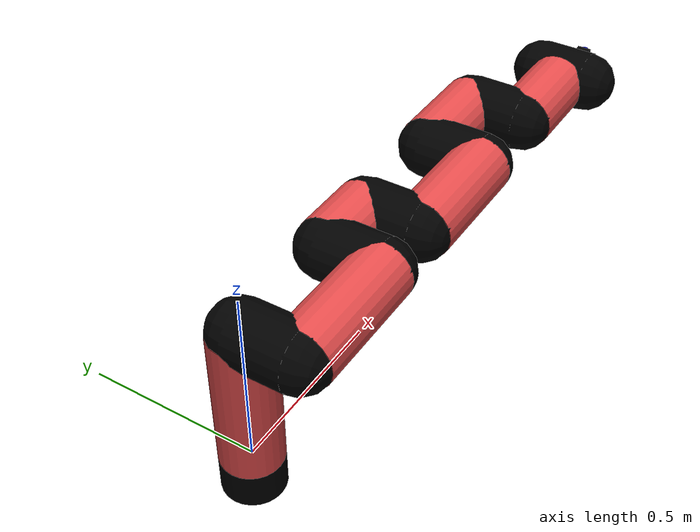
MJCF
<mujoco model="manipulator">
		<compiler angle="degree" coordinate="local" inertiafromgeom="auto" meshdir="meshes/"/>
		<option gravity="0 0 0" integrator="RK4" iterations="30" timestep="0.01"/>

		<default>
		<joint armature="1" limited="true" stiffness="10" damping="15" frictionloss="5.0"/>
		<geom conaffinity="1" condim="3" contype="1" friction=".5 .1 .1" margin="0.002"/>
		<motor ctrllimited="true"/>
		<position ctrllimited="true"/>
		</default>

		<asset>
		<texture builtin="gradient" height="100" rgb1="1.0 1.0 1.0" rgb2="1.0 1.0 1.0" type="skybox" width="100"/>
		<texture builtin="flat" height="32" name="arm_tex" rgb1="0.9 0.3 0.3" type="2d" width="32"/>
		<texture builtin="flat" height="32" name="gripper_tex" rgb1="0.0 0.0 0.0" type="cube" width="32"/>

		<material name="arm_mat" shininess="0.1" specular="0.1" texture="arm_tex"/>
		<material name="gripper_mat" shininess="1" specular="1" texture="gripper_tex"/>
		</asset>

		<worldbody>
		<light cutoff="45" diffuse=".8 .8 .8" dir="0 0.16 -1" directional="false" name="light" pos="0 -2.0 8.0" specular="0.3 0.3 0.3"/>

		<body name="base_link" pos="0 0 -0.1">
		<geom fromto="0 0 0 0 0 0.1" material="arm_mat" name="base_link" rgba="0.0 0.0 0.0 1" size="0.085" type="cylinder"/>
		</body>

		<body name="l1" pos="0 0 0">
<geom fromto="0 0 0 0 0 0.41" material="arm_mat" name="l1" rgba="0.9 0.3 0.3 1" size="0.085" type="cylinder"/>
<geom fromto="0 0 0.41 0 -0.16 0.41" material="arm_mat" name="l1_ex" rgba="0.0 0.0 0.0 1" size="0.085" type="capsule"/>
<joint axis="0 0 1" name="j1" pos="0 0 0" range="-90 90" damping="20.86" frictionloss="10.81"/>

<body name="l2" pos="0 -0.16 0.41">
<geom fromto="0 0 0 0.35 0 0" material="arm_mat" name="l2" rgba="0.9 0.3 0.3 1" size="0.085" type="cylinder"/>
<geom fromto="0.35 0 0 0.35 0.16 0" material="arm_mat" name="l2_ex" rgba="0.0 0.0 0.0 1" size="0.085" type="capsule"/>
<joint axis="0.0 1.0 0.0" name="j2" pos="0 0 0" range="-90 60" damping="25.09" frictionloss="7.99"/>

<body name="l3" pos="0.35 0.16 0">
<geom fromto="0 0 0 0.18 0 0" material="arm_mat" name="l3" rgba="0.9 0.3 0.3 1" size="0.085" type="cylinder"/>
<geom fromto="0.18 0 0 0.18 -0.16 0" material="arm_mat" name="l3_ex" rgba="0.0 0.0 0.0 1" size="0.085" type="capsule"/>
<joint axis="0.0 1.0 0.0" name="j3" pos="0 0 0" range="-30 60" damping="22.56" frictionloss="9.51"/>

<body name="l4" pos="0.18 -0.16 0">
<geom fromto="0 0 0 0.33 0 0" material="arm_mat" name="l4" rgba="0.9 0.3 0.3 1" size="0.085" type="cylinder"/>
<geom fromto="0.33 0 0 0.33 0.16 0" material="arm_mat" name="l4_ex" rgba="0.0 0.0 0.0 1" size="0.085" type="capsule"/>
<joint axis="0.0 1.0 0.0" name="j4" pos="0 0 0" range="-30 60" damping="32.54" frictionloss="12.68"/>

<body name="l5" pos="0.33 0.16 0">
<geom fromto="0 0 0 0.25 0 0" material="arm_mat" name="l5" rgba="0.9 0.3 0.3 1" size="0.085" type="cylinder"/>
<geom fromto="0.25 0 0 0.25 -0.16 0" material="arm_mat" name="l5_ex" rgba="0.0 0.0 0.0 1" size="0.085" type="capsule"/>
<joint axis="0.0 1.0 0.0" name="j5" pos="0 0 0" range="-30 60" damping="31.02" frictionloss="8.19"/>

<body name="l6" pos="0.25 -0.16 0">
<geom fromto="0 0 0 0.24 0 0" material="arm_mat" name="l6" rgba="0.9 0.3 0.3 1" size="0.085" type="cylinder"/>
<joint axis="0.0 1.0 0.0" name="j6" pos="0 0 0" range="-30 60" damping="34.4" frictionloss="12.33"/>

<body name="gripper" pos="0.24 0 0">
<geom fromto="0.05 -0.07 0 0.05 0.07 0" material="gripper_mat" name="gripper" rgba="0.0 0.0 0.0 1" size="0.085" type="capsule"/><joint axis="1 0 0" name="j7" pos="0 0 0" range="-90 90" damping="15" frictionloss="5.0"/><body name="finger" pos="0.1 0 0">
<geom fromto="0 0.0 0 0.1 0.0 0" material="gripper_mat" name="finger" rgba="0.0 0.0 0.0 1" size="0.020 0.06 0.06" type="box"/>
</body>
<site name="current" pos="0.2 0. 0.0" rgba="0. 0. 1.0 1" size="0.02" type="sphere"/>
</body>
</body>
</body>
</body>
</body>
</body>
</body>
</worldbody>
<actuator>
<motor ctrllimited="true" ctrlrange="-1.0 1.0" joint="j1" gear="74.13"/>
<motor ctrllimited="true" ctrlrange="-1.0 1.0" joint="j2" gear="95.97"/>
<motor ctrllimited="true" ctrlrange="-1.0 1.0" joint="j3" gear="49.35"/>
<motor ctrllimited="true" ctrlrange="-1.0 1.0" joint="j4" gear="61.22"/>
<motor ctrllimited="true" ctrlrange="-1.0 1.0" joint="j5" gear="85.49"/>
<motor ctrllimited="true" ctrlrange="-1.0 1.0" joint="j6" gear="99.75"/>
<motor ctrllimited="true" ctrlrange="-1.0 1.0" joint="j7" gear="80"/>
</actuator>
</mujoco>
